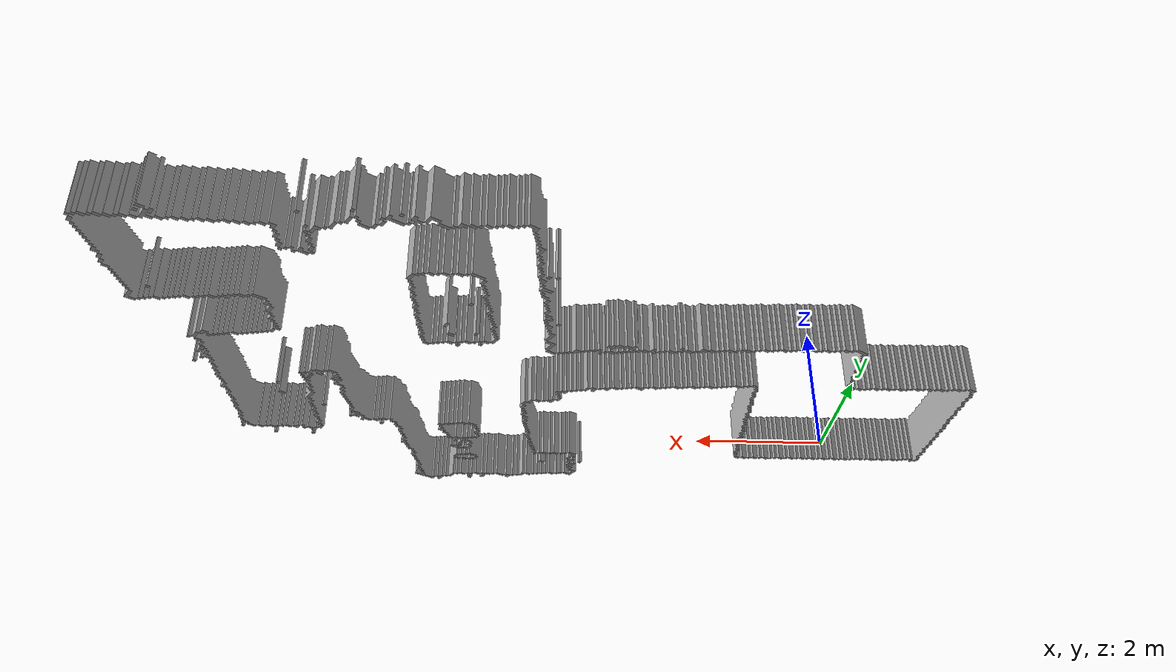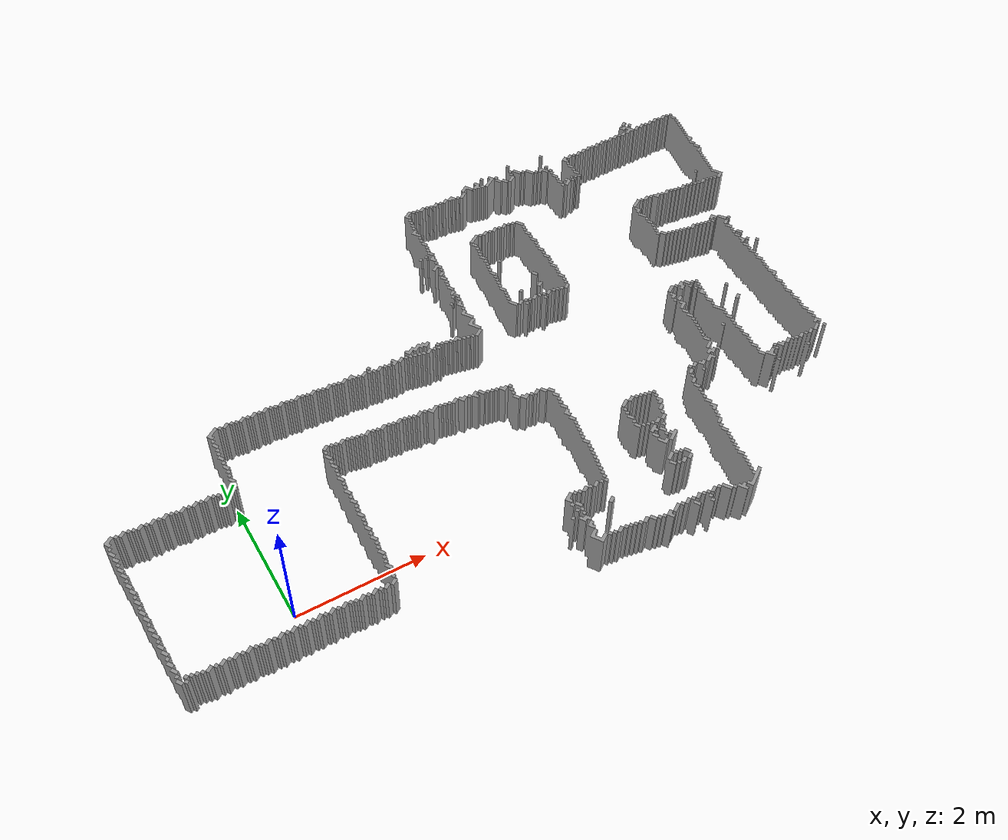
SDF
<?xml version='1.0'?>
<sdf version='1.6'>
  <model name='house'>
    <link name='link'>
      <pose frame=''>5.65344 1.00902 0 0 0 -2.55144</pose>
      <inertial>
        <mass>15</mass>
        <inertia>
          <ixx>0</ixx>
          <ixy>0</ixy>
          <ixz>0</ixz>
          <iyy>0</iyy>
          <iyz>0</iyz>
          <izz>0</izz>
        </inertia>
        <pose frame=''>0 0 0 0 -0 0</pose>
      </inertial>
      <self_collide>0</self_collide>
      <kinematic>0</kinematic>
      <visual name='visual'>
        <pose frame=''>0 0 0 0 -0 0</pose>
        <geometry>
          <mesh>
            <uri>model://house/meshes/map.stl</uri>
            <scale>1 1 1</scale>
          </mesh>
        </geometry>
        <cast_shadows>1</cast_shadows>
        <transparency>0</transparency>
        <material>
          <ambient>1 1 1 1</ambient>
          <diffuse>1 1 1 1</diffuse>
          <specular>0 0 0 1</specular>
          <emissive>0 0 0 1</emissive>
          <script>
            <name>vrc/grey_wall</name>
            <uri>__default__</uri>
          </script>
          <shader type='vertex'>
            <normal_map>__default__</normal_map>
          </shader>
        </material>
      </visual>
      <collision name='collision'>
        <laser_retro>0</laser_retro>
        <max_contacts>10</max_contacts>
        <pose frame=''>0 0 0 0 -0 0</pose>
        <geometry>
          <mesh>
            <uri>/home/lab301/catkin_ws/src/IV_project/worlds/house/meshes/map.stl</uri>
          </mesh>
        </geometry>
        <surface>
          <friction>
            <ode>
              <mu>1</mu>
              <mu2>1</mu2>
              <fdir1>0 0 0</fdir1>
              <slip1>0</slip1>
              <slip2>0</slip2>
            </ode>
            <torsional>
              <coefficient>1</coefficient>
              <patch_radius>0</patch_radius>
              <surface_radius>0</surface_radius>
              <use_patch_radius>1</use_patch_radius>
              <ode>
                <slip>0</slip>
              </ode>
            </torsional>
          </friction>
          <bounce>
            <restitution_coefficient>0</restitution_coefficient>
            <threshold>1e+06</threshold>
          </bounce>
          <contact>
            <collide_without_contact>0</collide_without_contact>
            <collide_without_contact_bitmask>1</collide_without_contact_bitmask>
            <collide_bitmask>1</collide_bitmask>
            <ode>
              <soft_cfm>0</soft_cfm>
              <soft_erp>0.2</soft_erp>
              <kp>1e+13</kp>
              <kd>1</kd>
              <max_vel>0.01</max_vel>
              <min_depth>0</min_depth>
            </ode>
            <bullet>
              <split_impulse>1</split_impulse>
              <split_impulse_penetration_threshold>-0.01</split_impulse_penetration_threshold>
              <soft_cfm>0</soft_cfm>
              <soft_erp>0.2</soft_erp>
              <kp>1e+13</kp>
              <kd>1</kd>
            </bullet>
          </contact>
        </surface>
      </collision>
    </link>
    <static>1</static>
    <allow_auto_disable>1</allow_auto_disable>
  </model>
</sdf>
